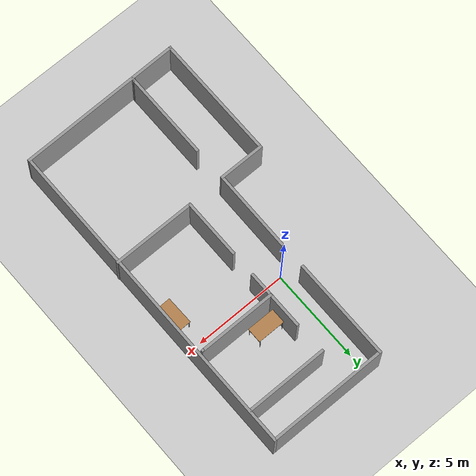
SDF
<sdf version="1.7">
 <world name="default">
  <light name="sun" type="directional">
   <pose>0 0 10 0 -0 0</pose>
   <diffuse>0.8 0.8 0.8 1</diffuse>
   <specular>0.2 0.2 0.2 1</specular>
   <attenuation>
    <range>1000</range>
    <constant>0.9</constant>
    <linear>0.01</linear>
    <quadratic>0.001</quadratic>
   </attenuation>
   <direction>-0.5 0.1 -0.9</direction>
   <spot><inner_angle>0</inner_angle><outer_angle>0</outer_angle><falloff>0</falloff></spot>
  </light>
  <model name="ground_plane">
   <static>1</static>
   <link name="link">
    <collision name="collision">
     <geometry><plane><normal>0 0 1</normal><size>100 100</size></plane></geometry>
     <surface><friction><ode><mu>100</mu><mu2>50</mu2></ode></friction></surface>
    </collision>
    <visual name="visual">
     <cast_shadows>0</cast_shadows>
     <geometry><plane><normal>0 0 1</normal><size>100 100</size></plane></geometry>
     <material>
      <script><uri>file://media/materials/scripts/gazebo.material</uri><name>Gazebo/Grey</name></script>
     </material>
    </visual>
   </link>
  </model>
  <gravity>0 0 -9.8</gravity>
  <magnetic_field>6e-06 2.3e-05 -4.2e-05</magnetic_field>
  <atmosphere type="adiabatic"/>
  <physics type="ode">
   <max_step_size>0.001</max_step_size>
   <real_time_factor>1</real_time_factor>
   <real_time_update_rate>1000</real_time_update_rate>
  </physics>
  <scene><ambient>0.4 0.4 0.4 1</ambient><background>0.7 0.7 0.7 1</background><shadows>1</shadows></scene>
  <spherical_coordinates>
   <surface_model>EARTH_WGS84</surface_model>
   <latitude_deg>0</latitude_deg>
   <longitude_deg>0</longitude_deg>
   <elevation>0</elevation>
   <heading_deg>0</heading_deg>
  </spherical_coordinates>
  <model name="small_house_03_0">
   <pose>7.33114 -2.70716 0 0 -0 0</pose>
   <link name="Wall_35">
    <collision name="Wall_35_Collision">
     <geometry><box><size>17.75 0.15 2.5</size></box></geometry>
     <pose>0 0 1.25 0 -0 0</pose>
    </collision>
    <visual name="Wall_35_Visual">
     <pose>0 0 1.25 0 -0 0</pose>
     <geometry><box><size>17.75 0.15 2.5</size></box></geometry>
     <material>
      <script><uri>file://media/materials/scripts/gazebo.material</uri><name>Gazebo/Grey</name></script>
      <ambient>1 1 1 1</ambient>
     </material>
     <meta><layer>0</layer></meta>
    </visual>
    <pose>-1.55934 0.050428 0 0 -0 -1.5708</pose>
   </link>
   <link name="Wall_37">
    <collision name="Wall_37_Collision">
     <geometry><box><size>6.5 0.15 2.5</size></box></geometry>
     <pose>0 0 1.25 0 -0 0</pose>
    </collision>
    <visual name="Wall_37_Visual">
     <pose>0 0 1.25 0 -0 0</pose>
     <geometry><box><size>6.5 0.15 2.5</size></box></geometry>
     <material>
      <script><uri>file://media/materials/scripts/gazebo.material</uri><name>Gazebo/Grey</name></script>
      <ambient>1 1 1 1</ambient>
     </material>
     <meta><layer>0</layer></meta>
    </visual>
    <pose>-4.73434 8.85043 0 0 -0 3.14159</pose>
   </link>
   <link name="Wall_39">
    <collision name="Wall_39_Collision">
     <geometry><box><size>2.5 0.15 2.5</size></box></geometry>
     <pose>0 0 1.25 0 -0 0</pose>
    </collision>
    <visual name="Wall_39_Visual">
     <pose>0 0 1.25 0 -0 0</pose>
     <geometry><box><size>2.5 0.15 2.5</size></box></geometry>
     <material>
      <script><uri>file://media/materials/scripts/gazebo.material</uri><name>Gazebo/Grey</name></script>
      <ambient>1 1 1 1</ambient>
     </material>
     <meta><layer>0</layer></meta>
    </visual>
    <pose>-9.08434 -2.24957 0 0 -0 3.14159</pose>
   </link>
   <link name="Wall_40">
    <collision name="Wall_40_Collision">
     <geometry><box><size>6.75 0.15 2.5</size></box></geometry>
     <pose>0 0 1.25 0 -0 0</pose>
    </collision>
    <visual name="Wall_40_Visual">
     <pose>0 0 1.25 0 -0 0</pose>
     <geometry><box><size>6.75 0.15 2.5</size></box></geometry>
     <material>
      <script><uri>file://media/materials/scripts/gazebo.material</uri><name>Gazebo/Grey</name></script>
      <ambient>1 1 1 1</ambient>
     </material>
     <meta><layer>0</layer></meta>
    </visual>
    <pose>-10.2593 -5.54957 0 0 -0 -1.5708</pose>
   </link>
   <link name="Wall_41">
    <collision name="Wall_41_Collision">
     <geometry><box><size>8.85057 0.15 2.5</size></box></geometry>
     <pose>0 0 1.25 0 -0 0</pose>
    </collision>
    <visual name="Wall_41_Visual">
     <pose>0 0 1.25 0 -0 0</pose>
     <geometry><box><size>8.85057 0.15 2.5</size></box></geometry>
     <material>
      <script><uri>file://media/materials/scripts/gazebo.material</uri><name>Gazebo/Grey</name></script>
      <ambient>1 1 1 1</ambient>
     </material>
     <meta><layer>0</layer></meta>
    </visual>
    <pose>-5.90934 -8.79957 0 0 -0 0.011494</pose>
   </link>
   <link name="Wall_43">
    <collision name="Wall_43_Collision">
     <geometry><box><size>4.75 0.15 2.5</size></box></geometry>
     <pose>0 0 1.25 0 -0 0</pose>
    </collision>
    <visual name="Wall_43_Visual">
     <pose>0 0 1.25 0 -0 0</pose>
     <geometry><box><size>4.75 0.15 2.5</size></box></geometry>
     <material>
      <script><uri>file://media/materials/scripts/gazebo.material</uri><name>Gazebo/Grey</name></script>
      <ambient>1 1 1 1</ambient>
     </material>
     <meta><layer>0</layer></meta>
    </visual>
    <pose>-7.87892 -6.36113 0 0 -0 -1.5708</pose>
   </link>
   <link name="Wall_44">
    <collision name="Wall_44_Collision">
     <geometry><box><size>0.25 0.15 2.5</size></box></geometry>
     <pose>0 0 1.25 0 -0 0</pose>
    </collision>
    <visual name="Wall_44_Visual">
     <pose>0 0 1.25 0 -0 0</pose>
     <geometry><box><size>0.25 0.15 2.5</size></box></geometry>
     <material>
      <script><uri>file://media/materials/scripts/gazebo.material</uri><name>Gazebo/Grey</name></script>
      <ambient>1 1 1 1</ambient>
     </material>
     <meta><layer>0</layer></meta>
    </visual>
    <pose>-7.89187 -8.70942 0 0 -0 -1.8326</pose>
   </link>
   <link name="Wall_46">
    <collision name="Wall_46_Collision">
     <geometry><box><size>4.5 0.15 2.5</size></box></geometry>
     <pose>0 0 1.25 0 -0 0</pose>
    </collision>
    <visual name="Wall_46_Visual">
     <pose>0 0 1.25 0 -0 0</pose>
     <geometry><box><size>4.5 0.15 2.5</size></box></geometry>
     <material>
      <script><uri>file://media/materials/scripts/gazebo.material</uri><name>Gazebo/Grey</name></script>
      <ambient>1 1 1 1</ambient>
     </material>
     <meta><layer>0</layer></meta>
    </visual>
    <pose>-3.7034 -2.20017 0 0 -0 0</pose>
   </link>
   <link name="Wall_48">
    <collision name="Wall_48_Collision">
     <geometry><box><size>3.25 0.15 2.5</size></box></geometry>
     <pose>0 0 1.25 0 -0 0</pose>
    </collision>
    <visual name="Wall_48_Visual">
     <pose>0 0 1.25 0 -0 0</pose>
     <geometry><box><size>3.25 0.15 2.5</size></box></geometry>
     <material>
      <script><uri>file://media/materials/scripts/gazebo.material</uri><name>Gazebo/Grey</name></script>
      <ambient>1 1 1 1</ambient>
     </material>
     <meta><layer>0</layer></meta>
    </visual>
    <pose>-5.8784 -0.650169 0 0 -0 1.5708</pose>
   </link>
   <link name="Wall_50">
    <collision name="Wall_50_Collision">
     <geometry><box><size>3.25 0.15 2.5</size></box></geometry>
     <pose>0 0 1.25 0 -0 0</pose>
    </collision>
    <visual name="Wall_50_Visual">
     <pose>0 0 1.25 0 -0 0</pose>
     <geometry><box><size>3.25 0.15 2.5</size></box></geometry>
     <material>
      <script><uri>file://media/materials/scripts/gazebo.material</uri><name>Gazebo/Grey</name></script>
      <ambient>1 1 1 1</ambient>
     </material>
     <meta><layer>0</layer></meta>
    </visual>
    <pose>-5.8784 3.86265 0 0 -0 1.5708</pose>
   </link>
   <link name="Wall_52">
    <collision name="Wall_52_Collision">
     <geometry><box><size>4.5 0.15 2.5</size></box></geometry>
     <pose>0 0 1.25 0 -0 0</pose>
    </collision>
    <visual name="Wall_52_Visual">
     <pose>0 0 1.25 0 -0 0</pose>
     <geometry><box><size>4.5 0.15 2.5</size></box></geometry>
     <material>
      <script><uri>file://media/materials/scripts/gazebo.material</uri><name>Gazebo/Grey</name></script>
      <ambient>1 1 1 1</ambient>
     </material>
     <meta><layer>0</layer></meta>
    </visual>
    <pose>-3.74992 7.10461 0 0 -0 0</pose>
   </link>
   <link name="Wall_54">
    <collision name="Wall_54_Collision">
     <geometry><box><size>4.25 0.15 2.5</size></box></geometry>
     <pose>0 0 1.25 0 -0 0</pose>
    </collision>
    <visual name="Wall_54_Visual">
     <pose>0 0 1.25 0 -0 0</pose>
     <geometry><box><size>4.25 0.15 2.5</size></box></geometry>
     <material>
      <script><uri>file://media/materials/scripts/gazebo.material</uri><name>Gazebo/Grey</name></script>
      <ambient>1 1 1 1</ambient>
     </material>
     <meta><layer>0</layer></meta>
    </visual>
    <pose>-3.8284 3.5688 0 0 -0 0</pose>
   </link>
   <link name="Wall_55">
    <collision name="Wall_55_Collision">
     <geometry><box><size>0.15 0.15 2.5</size></box></geometry>
     <pose>0 0 1.25 0 -0 0</pose>
    </collision>
    <visual name="Wall_55_Visual">
     <pose>0 0 1.25 0 -0 0</pose>
     <geometry><box><size>0.15 0.15 2.5</size></box></geometry>
     <material>
      <script><uri>file://media/materials/scripts/gazebo.material</uri><name>Gazebo/Grey</name></script>
      <ambient>1 1 1 1</ambient>
     </material>
     <meta><layer>0</layer></meta>
    </visual>
    <pose>-1.7784 3.5688 0 0 -0 0</pose>
   </link>
   <link name="Wall_57">
    <collision name="Wall_57_Collision">
     <geometry><box><size>5.5 0.15 2.5</size></box></geometry>
     <pose>0 0 1.25 0 -0 0</pose>
    </collision>
    <visual name="Wall_57_Visual">
     <pose>0 0 1.25 0 -0 0</pose>
     <geometry><box><size>5.5 0.15 2.5</size></box></geometry>
     <material>
      <script><uri>file://media/materials/scripts/gazebo.material</uri><name>Gazebo/Grey</name></script>
      <ambient>1 1 1 1</ambient>
     </material>
     <meta><layer>0</layer></meta>
    </visual>
    <pose>-7.90934 6.17543 0 0 -0 -1.5708</pose>
   </link>
   <link name="Wall_59">
    <collision name="Wall_59_Collision">
     <geometry><box><size>4.43319 0.15 2.5</size></box></geometry>
     <pose>0 0 1.25 0 -0 0</pose>
    </collision>
    <visual name="Wall_59_Visual">
     <pose>0 0 1.25 0 -0 0</pose>
     <geometry><box><size>4.43319 0.15 2.5</size></box></geometry>
     <material>
      <script><uri>file://media/materials/scripts/gazebo.material</uri><name>Gazebo/Grey</name></script>
      <ambient>1 1 1 1</ambient>
     </material>
     <meta><layer>0</layer></meta>
    </visual>
    <pose>-7.89413 -0.108032 0 0 -0 -1.5779</pose>
   </link>
   <static>1</static>
  </model>
  <model name="table">
   <static>1</static>
   <link name="link">
    <collision name="surface">
     <pose>0 0 1 0 -0 0</pose>
     <geometry><box><size>1.5 0.8 0.03</size></box></geometry>
     <surface><friction><ode><mu>0.6</mu><mu2>0.6</mu2></ode></friction></surface>
    </collision>
    <visual name="visual1">
     <pose>0 0 1 0 -0 0</pose>
     <geometry><box><size>1.5 0.8 0.03</size></box></geometry>
     <material>
      <script><uri>file://media/materials/scripts/gazebo.material</uri><name>Gazebo/Wood</name></script>
     </material>
    </visual>
    <collision name="front_left_leg">
     <pose>0.68 0.38 0.5 0 -0 0</pose>
     <geometry><cylinder><radius>0.02</radius><length>1</length></cylinder></geometry>
    </collision>
    <visual name="front_left_leg">
     <pose>0.68 0.38 0.5 0 -0 0</pose>
     <geometry><cylinder><radius>0.02</radius><length>1</length></cylinder></geometry>
     <material>
      <script><uri>file://media/materials/scripts/gazebo.material</uri><name>Gazebo/Grey</name></script>
     </material>
    </visual>
    <collision name="front_right_leg">
     <pose>0.68 -0.38 0.5 0 -0 0</pose>
     <geometry><cylinder><radius>0.02</radius><length>1</length></cylinder></geometry>
    </collision>
    <visual name="front_right_leg">
     <pose>0.68 -0.38 0.5 0 -0 0</pose>
     <geometry><cylinder><radius>0.02</radius><length>1</length></cylinder></geometry>
     <material>
      <script><uri>file://media/materials/scripts/gazebo.material</uri><name>Gazebo/Grey</name></script>
     </material>
    </visual>
    <collision name="back_right_leg">
     <pose>-0.68 -0.38 0.5 0 -0 0</pose>
     <geometry><cylinder><radius>0.02</radius><length>1</length></cylinder></geometry>
    </collision>
    <visual name="back_right_leg">
     <pose>-0.68 -0.38 0.5 0 -0 0</pose>
     <geometry><cylinder><radius>0.02</radius><length>1</length></cylinder></geometry>
     <material>
      <script><uri>file://media/materials/scripts/gazebo.material</uri><name>Gazebo/Grey</name></script>
     </material>
    </visual>
    <collision name="back_left_leg">
     <pose>-0.68 0.38 0.5 0 -0 0</pose>
     <geometry><cylinder><radius>0.02</radius><length>1</length></cylinder></geometry>
    </collision>
    <visual name="back_left_leg">
     <pose>-0.68 0.38 0.5 0 -0 0</pose>
     <geometry><cylinder><radius>0.02</radius><length>1</length></cylinder></geometry>
     <material>
      <script><uri>file://media/materials/scripts/gazebo.material</uri><name>Gazebo/Grey</name></script>
     </material>
    </visual>
   </link>
   <pose>5.24974 -1.61901 0 0 0 -1.55252</pose>
  </model>
  <model name="table_0">
   <static>1</static>
   <link name="link">
    <collision name="surface">
     <pose>0 0 1 0 -0 0</pose>
     <geometry><box><size>1.5 0.8 0.03</size></box></geometry>
     <surface><friction><ode><mu>0.6</mu><mu2>0.6</mu2></ode></friction></surface>
    </collision>
    <visual name="visual1">
     <pose>0 0 1 0 -0 0</pose>
     <geometry><box><size>1.5 0.8 0.03</size></box></geometry>
     <material>
      <script><uri>file://media/materials/scripts/gazebo.material</uri><name>Gazebo/Wood</name></script>
     </material>
    </visual>
    <collision name="front_left_leg">
     <pose>0.68 0.38 0.5 0 -0 0</pose>
     <geometry><cylinder><radius>0.02</radius><length>1</length></cylinder></geometry>
    </collision>
    <visual name="front_left_leg">
     <pose>0.68 0.38 0.5 0 -0 0</pose>
     <geometry><cylinder><radius>0.02</radius><length>1</length></cylinder></geometry>
     <material>
      <script><uri>file://media/materials/scripts/gazebo.material</uri><name>Gazebo/Grey</name></script>
     </material>
    </visual>
    <collision name="front_right_leg">
     <pose>0.68 -0.38 0.5 0 -0 0</pose>
     <geometry><cylinder><radius>0.02</radius><length>1</length></cylinder></geometry>
    </collision>
    <visual name="front_right_leg">
     <pose>0.68 -0.38 0.5 0 -0 0</pose>
     <geometry><cylinder><radius>0.02</radius><length>1</length></cylinder></geometry>
     <material>
      <script><uri>file://media/materials/scripts/gazebo.material</uri><name>Gazebo/Grey</name></script>
     </material>
    </visual>
    <collision name="back_right_leg">
     <pose>-0.68 -0.38 0.5 0 -0 0</pose>
     <geometry><cylinder><radius>0.02</radius><length>1</length></cylinder></geometry>
    </collision>
    <visual name="back_right_leg">
     <pose>-0.68 -0.38 0.5 0 -0 0</pose>
     <geometry><cylinder><radius>0.02</radius><length>1</length></cylinder></geometry>
     <material>
      <script><uri>file://media/materials/scripts/gazebo.material</uri><name>Gazebo/Grey</name></script>
     </material>
    </visual>
    <collision name="back_left_leg">
     <pose>-0.68 0.38 0.5 0 -0 0</pose>
     <geometry><cylinder><radius>0.02</radius><length>1</length></cylinder></geometry>
    </collision>
    <visual name="back_left_leg">
     <pose>-0.68 0.38 0.5 0 -0 0</pose>
     <geometry><cylinder><radius>0.02</radius><length>1</length></cylinder></geometry>
     <material>
      <script><uri>file://media/materials/scripts/gazebo.material</uri><name>Gazebo/Grey</name></script>
     </material>
    </visual>
   </link>
   <pose>2.27252 1.54613 0 0 -0 0</pose>
  </model>
 </world>
</sdf>
